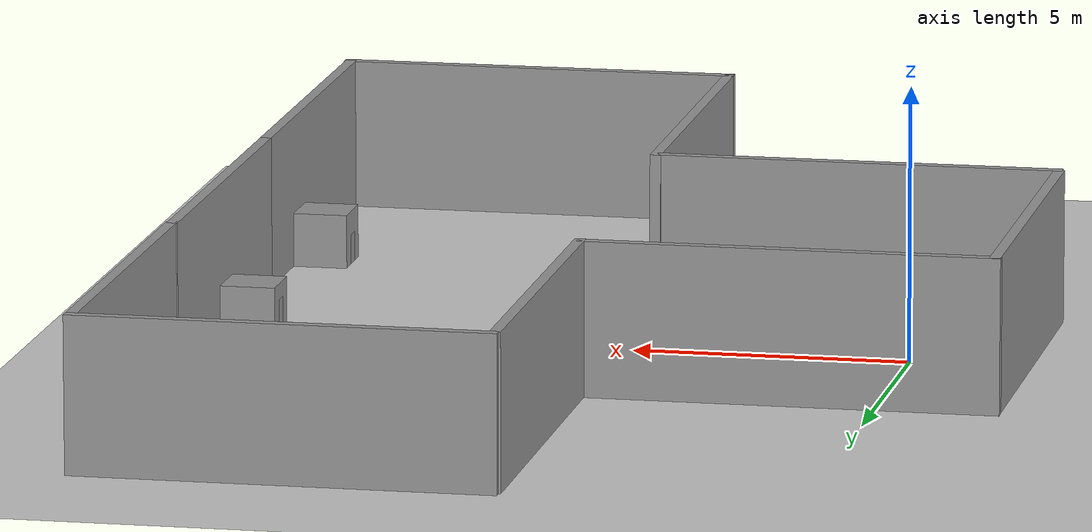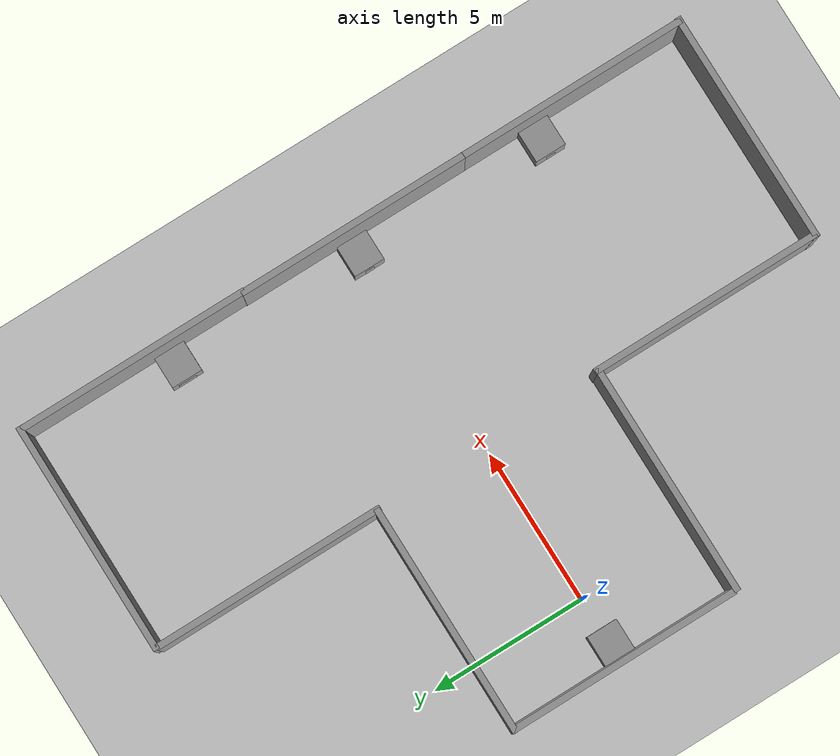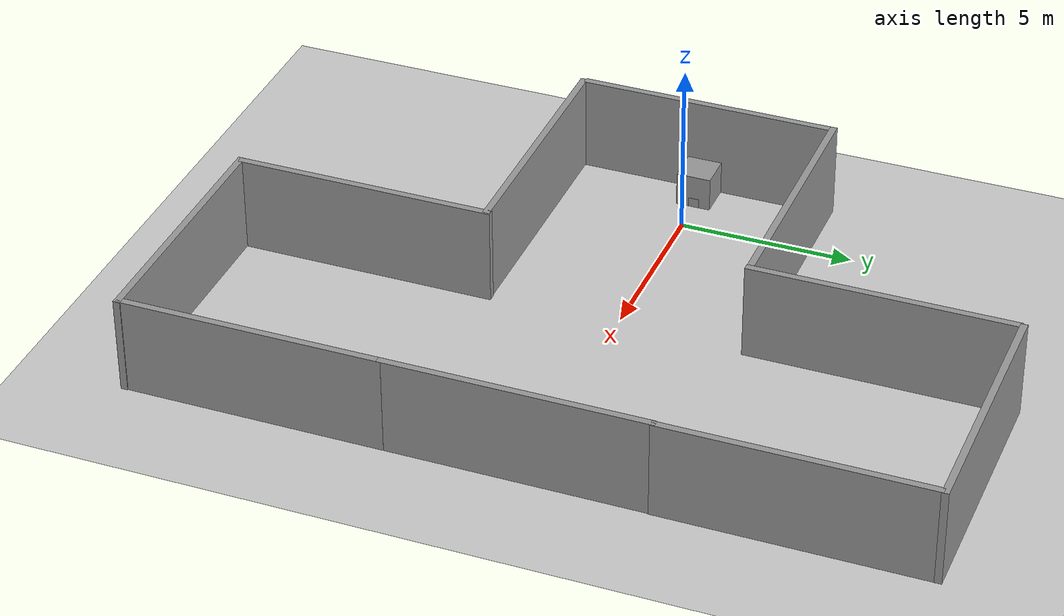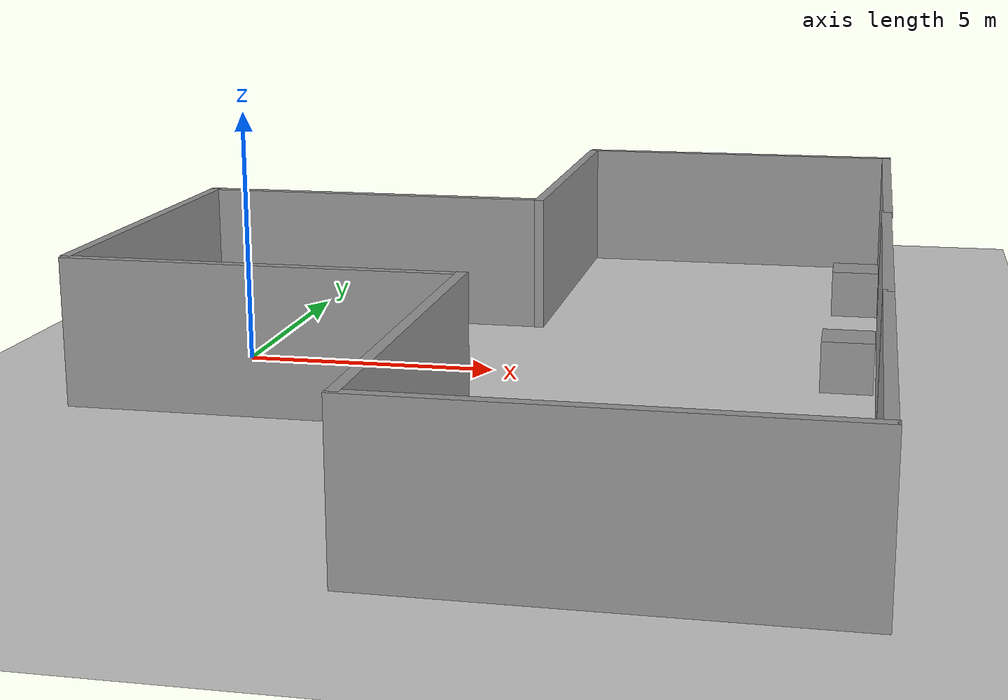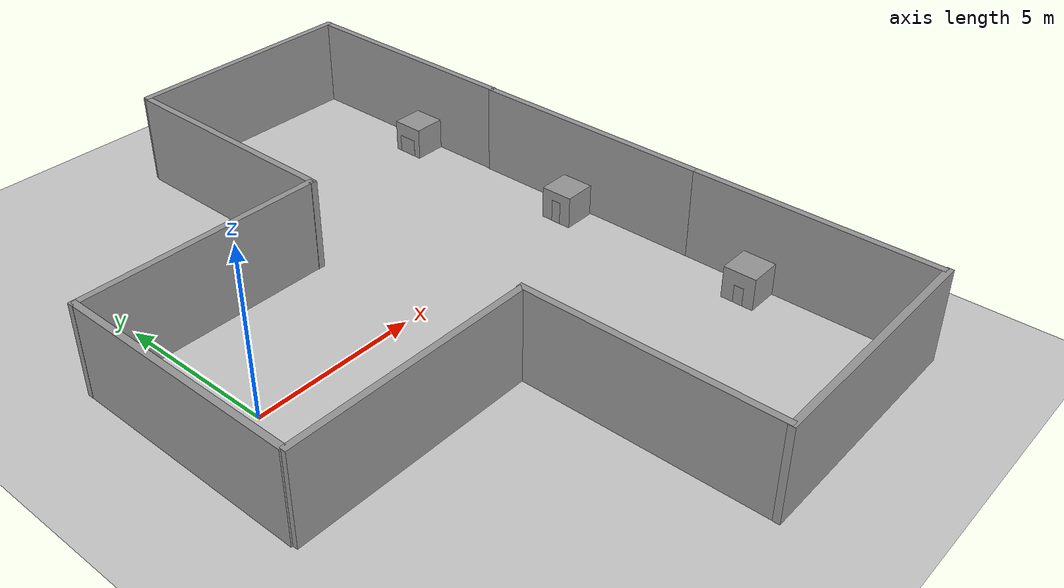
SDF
<sdf version="1.7">
 <world name="default">
  <model name="ground_plane">
   <static>1</static>
   <link name="link">
    <collision name="collision">
     <geometry><plane><normal>0 0 1</normal><size>100 100</size></plane></geometry>
     <surface><friction><ode><mu>100</mu><mu2>50</mu2></ode></friction></surface>
    </collision>
    <visual name="visual">
     <cast_shadows>0</cast_shadows>
     <geometry><plane><normal>0 0 1</normal><size>100 100</size></plane></geometry>
     <material>
      <script><uri>file://media/materials/scripts/gazebo.material</uri><name>Gazebo/Grey</name></script>
     </material>
    </visual>
   </link>
  </model>
  <light name="sun" type="directional">
   <pose>0 0 10 0 -0 0</pose>
   <diffuse>0.8 0.8 0.8 1</diffuse>
   <specular>0.2 0.2 0.2 1</specular>
   <attenuation>
    <range>1000</range>
    <constant>0.9</constant>
    <linear>0.01</linear>
    <quadratic>0.001</quadratic>
   </attenuation>
   <direction>-0.5 0.1 -0.9</direction>
   <spot><inner_angle>0</inner_angle><outer_angle>0</outer_angle><falloff>0</falloff></spot>
  </light>
  <scene><shadows>0</shadows><ambient>0.4 0.4 0.4 1</ambient><background>0.7 0.7 0.7 1</background></scene>
  <physics type="ode">
   <real_time_update_rate>1000</real_time_update_rate>
   <max_step_size>0.001</max_step_size>
   <real_time_factor>1</real_time_factor>
   <ode>
    <solver>
     <type>quick</type>
     <iters>150</iters>
     <precon_iters>0</precon_iters>
     <sor>1.4</sor>
     <use_dynamic_moi_rescaling>1</use_dynamic_moi_rescaling>
    </solver>
    <constraints>
     <cfm>1e-05</cfm>
     <erp>0.2</erp>
     <contact_max_correcting_vel>2000</contact_max_correcting_vel>
     <contact_surface_layer>0.01</contact_surface_layer>
    </constraints>
   </ode>
  </physics>
  <gravity>0 0 -9.8</gravity>
  <magnetic_field>6e-06 2.3e-05 -4.2e-05</magnetic_field>
  <atmosphere type="adiabatic"/>
  <audio><device>default</device></audio>
  <spherical_coordinates>
   <surface_model>EARTH_WGS84</surface_model>
   <latitude_deg>0</latitude_deg>
   <longitude_deg>0</longitude_deg>
   <elevation>0</elevation>
   <heading_deg>0</heading_deg>
  </spherical_coordinates>
  <model name="grey_wall">
   <static>1</static>
   <link name="link">
    <pose>0 0 1.4 0 -0 0</pose>
    <collision name="collision"><geometry><box><size>7.5 0.2 2.8</size></box></geometry></collision>
    <visual name="visual">
     <cast_shadows>0</cast_shadows>
     <geometry><box><size>7.5 0.2 2.8</size></box></geometry>
     <material>
      <script>
       <uri>model://grey_wall/materials/scripts</uri>
       <uri>model://grey_wall/materials/textures</uri>
       <name>vrc/grey_wall</name>
      </script>
     </material>
    </visual>
   </link>
   <pose>1.53922 3.69189 0 0 -0 0</pose>
  </model>
  <model name="grey_wall_0">
   <static>1</static>
   <link name="link">
    <pose>0 0 1.4 0 -0 0</pose>
    <collision name="collision"><geometry><box><size>7.5 0.2 2.8</size></box></geometry></collision>
    <visual name="visual">
     <cast_shadows>0</cast_shadows>
     <geometry><box><size>7.5 0.2 2.8</size></box></geometry>
     <material>
      <script>
       <uri>model://grey_wall/materials/scripts</uri>
       <uri>model://grey_wall/materials/textures</uri>
       <name>vrc/grey_wall</name>
      </script>
     </material>
    </visual>
   </link>
   <pose>1.59607 -3.78368 0 0 -0 0</pose>
  </model>
  <model name="grey_wall_1_clone">
   <static>1</static>
   <link name="link">
    <pose>0 0 1.4 0 -0 0</pose>
    <collision name="collision"><geometry><box><size>7.5 0.2 2.8</size></box></geometry></collision>
    <visual name="visual">
     <cast_shadows>0</cast_shadows>
     <geometry><box><size>7.5 0.2 2.8</size></box></geometry>
     <material>
      <script>
       <uri>model://grey_wall/materials/scripts</uri>
       <uri>model://grey_wall/materials/textures</uri>
       <name>vrc/grey_wall</name>
      </script>
     </material>
    </visual>
   </link>
   <pose>-2.10331 0.015015 0 0 -0 1.57142</pose>
  </model>
  <model name="unit_box">
   <pose>11.9688 6.32161 0.5 0 -0 0.000695</pose>
   <link name="link">
    <inertial>
     <mass>1</mass>
     <inertia>
      <ixx>0.166667</ixx>
      <ixy>0</ixy>
      <ixz>0</ixz>
      <iyy>0.166667</iyy>
      <iyz>0</iyz>
      <izz>0.166667</izz>
     </inertia>
    </inertial>
    <collision name="collision"><geometry><box><size>1 1 1</size></box></geometry></collision>
    <visual name="visual">
     <geometry><box><size>1 1 1</size></box></geometry>
     <material>
      <script><name>Gazebo/Grey</name><uri>file://media/materials/scripts/gazebo.material</uri></script>
     </material>
    </visual>
   </link>
  </model>
  <model name="unit_box_clone">
   <pose>11.9172 0.12312 0.5 0 -0 0.000407</pose>
   <link name="link">
    <inertial>
     <mass>1</mass>
     <inertia>
      <ixx>0.166667</ixx>
      <ixy>0</ixy>
      <ixz>0</ixz>
      <iyy>0.166667</iyy>
      <iyz>0</iyz>
      <izz>0.166667</izz>
     </inertia>
    </inertial>
    <collision name="collision"><geometry><box><size>1 1 1</size></box></geometry></collision>
    <visual name="visual">
     <geometry><box><size>1 1 1</size></box></geometry>
     <material>
      <script><name>Gazebo/Grey</name><uri>file://media/materials/scripts/gazebo.material</uri></script>
     </material>
    </visual>
   </link>
  </model>
  <model name="unit_box_clone_0">
   <pose>11.9709 -6.13481 0.5 0 -0 0.000623</pose>
   <link name="link">
    <inertial>
     <mass>1</mass>
     <inertia>
      <ixx>0.166667</ixx>
      <ixy>0</ixy>
      <ixz>0</ixz>
      <iyy>0.166667</iyy>
      <iyz>0</iyz>
      <izz>0.166667</izz>
     </inertia>
    </inertial>
    <collision name="collision"><geometry><box><size>1 1 1</size></box></geometry></collision>
    <visual name="visual">
     <geometry><box><size>1 1 1</size></box></geometry>
     <material>
      <script><name>Gazebo/Grey</name><uri>file://media/materials/scripts/gazebo.material</uri></script>
     </material>
    </visual>
   </link>
  </model>
  <model name="unit_box_clone_clone">
   <pose>-1.5 -0.023783 0.5 0 -0 0.000592</pose>
   <link name="link">
    <inertial>
     <mass>1</mass>
     <inertia>
      <ixx>0.166667</ixx>
      <ixy>0</ixy>
      <ixz>0</ixz>
      <iyy>0.166667</iyy>
      <iyz>0</iyz>
      <izz>0.166667</izz>
     </inertia>
    </inertial>
    <collision name="collision"><geometry><box><size>1 1 1</size></box></geometry></collision>
    <visual name="visual">
     <geometry><box><size>1 1 1</size></box></geometry>
     <material>
      <script><name>Gazebo/Grey</name><uri>file://media/materials/scripts/gazebo.material</uri></script>
     </material>
    </visual>
   </link>
  </model>
  <model name="grey_wall_1_clone_0_clone">
   <static>1</static>
   <link name="link">
    <pose>0 0 1.4 0 -0 0</pose>
    <collision name="collision"><geometry><box><size>7.5 0.2 2.8</size></box></geometry></collision>
    <visual name="visual">
     <cast_shadows>0</cast_shadows>
     <geometry><box><size>7.5 0.2 2.8</size></box></geometry>
     <material>
      <script>
       <uri>model://grey_wall/materials/scripts</uri>
       <uri>model://grey_wall/materials/textures</uri>
       <name>vrc/grey_wall</name>
      </script>
     </material>
    </visual>
   </link>
   <pose>5.24864 7.32783 0 0 -0 1.57142</pose>
  </model>
  <model name="grey_wall_1_clone_0_clone_0">
   <static>1</static>
   <link name="link">
    <pose>0 0 1.4 0 -0 0</pose>
    <collision name="collision"><geometry><box><size>7.5 0.2 2.8</size></box></geometry></collision>
    <visual name="visual">
     <cast_shadows>0</cast_shadows>
     <geometry><box><size>7.5 0.2 2.8</size></box></geometry>
     <material>
      <script>
       <uri>model://grey_wall/materials/scripts</uri>
       <uri>model://grey_wall/materials/textures</uri>
       <name>vrc/grey_wall</name>
      </script>
     </material>
    </visual>
   </link>
   <pose>5.29861 -7.41012 0 0 -0 1.57142</pose>
  </model>
  <model name="grey_wall_clone">
   <static>1</static>
   <link name="link">
    <pose>0 0 1.4 0 -0 0</pose>
    <collision name="collision"><geometry><box><size>7.5 0.2 2.8</size></box></geometry></collision>
    <visual name="visual">
     <cast_shadows>0</cast_shadows>
     <geometry><box><size>7.5 0.2 2.8</size></box></geometry>
     <material>
      <script>
       <uri>model://grey_wall/materials/scripts</uri>
       <uri>model://grey_wall/materials/textures</uri>
       <name>vrc/grey_wall</name>
      </script>
     </material>
    </visual>
   </link>
   <pose>8.93433 11.1054 0 0 -0 0</pose>
  </model>
  <model name="grey_wall_clone_0">
   <static>1</static>
   <link name="link">
    <pose>0 0 1.4 0 -0 0</pose>
    <collision name="collision"><geometry><box><size>7.5 0.2 2.8</size></box></geometry></collision>
    <visual name="visual">
     <cast_shadows>0</cast_shadows>
     <geometry><box><size>7.5 0.2 2.8</size></box></geometry>
     <material>
      <script>
       <uri>model://grey_wall/materials/scripts</uri>
       <uri>model://grey_wall/materials/textures</uri>
       <name>vrc/grey_wall</name>
      </script>
     </material>
    </visual>
   </link>
   <pose>8.94466 -11.1313 0 0 -0 0</pose>
  </model>
  <model name="grey_wall_1_clone_0_clone_clone">
   <static>1</static>
   <link name="link">
    <pose>0 0 1.4 0 -0 0</pose>
    <collision name="collision"><geometry><box><size>7.5 0.2 2.8</size></box></geometry></collision>
    <visual name="visual">
     <cast_shadows>0</cast_shadows>
     <geometry><box><size>7.5 0.2 2.8</size></box></geometry>
     <material>
      <script>
       <uri>model://grey_wall/materials/scripts</uri>
       <uri>model://grey_wall/materials/textures</uri>
       <name>vrc/grey_wall</name>
      </script>
     </material>
    </visual>
   </link>
   <pose>12.5818 7.32662 0 0 -0 1.57142</pose>
  </model>
  <model name="grey_wall_1_clone_0_clone_clone_0">
   <static>1</static>
   <link name="link">
    <pose>0 0 1.4 0 -0 0</pose>
    <collision name="collision"><geometry><box><size>7.5 0.2 2.8</size></box></geometry></collision>
    <visual name="visual">
     <cast_shadows>0</cast_shadows>
     <geometry><box><size>7.5 0.2 2.8</size></box></geometry>
     <material>
      <script>
       <uri>model://grey_wall/materials/scripts</uri>
       <uri>model://grey_wall/materials/textures</uri>
       <name>vrc/grey_wall</name>
      </script>
     </material>
    </visual>
   </link>
   <pose>12.5653 -0.046938 0 0 -0 1.57142</pose>
  </model>
  <model name="grey_wall_1_clone_0_clone_clone_1">
   <static>1</static>
   <link name="link">
    <pose>0 0 1.4 0 -0 0</pose>
    <collision name="collision"><geometry><box><size>7.5 0.2 2.8</size></box></geometry></collision>
    <visual name="visual">
     <cast_shadows>0</cast_shadows>
     <geometry><box><size>7.5 0.2 2.8</size></box></geometry>
     <material>
      <script>
       <uri>model://grey_wall/materials/scripts</uri>
       <uri>model://grey_wall/materials/textures</uri>
       <name>vrc/grey_wall</name>
      </script>
     </material>
    </visual>
   </link>
   <pose>12.5717 -7.42519 0 0 -0 1.57142</pose>
  </model>
  <model name="white_box">
   <link name="link_0">
    <inertial>
     <mass>1</mass>
     <inertia>
      <ixx>0.166667</ixx>
      <ixy>0</ixy>
      <ixz>0</ixz>
      <iyy>0.166667</iyy>
      <iyz>0</iyz>
      <izz>0.166667</izz>
     </inertia>
    </inertial>
    <visual name="visual">
     <geometry><box><size>0.560192 0.596222 0.001025</size></box></geometry>
     <material>
      <lighting>1</lighting>
      <script><uri>file://media/materials/scripts/gazebo.material</uri><name>Gazebo/Grey</name></script>
      <shader type="pixel"><normal_map>__default__</normal_map></shader>
      <ambient>1 1 1 1</ambient>
      <diffuse>0.7 0.7 0.7 1</diffuse>
      <specular>0.01 0.01 0.01 1</specular>
      <emissive>0 0 0 1</emissive>
     </material>
    </visual>
    <collision name="collision">
     <geometry><box><size>0.560192 0.596222 0.001025</size></box></geometry>
     <surface>
      <friction>
       <ode><mu>1</mu><mu2>1</mu2><fdir1>0 0 0</fdir1><slip1>0</slip1><slip2>0</slip2></ode>
       <torsional>
        <coefficient>1</coefficient>
        <patch_radius>0</patch_radius>
        <surface_radius>0</surface_radius>
        <use_patch_radius>1</use_patch_radius>
        <ode><slip>0</slip></ode>
       </torsional>
      </friction>
      <bounce><restitution_coefficient>0</restitution_coefficient><threshold>1e+06</threshold></bounce>
      <contact>
       <collide_without_contact>0</collide_without_contact>
       <collide_without_contact_bitmask>1</collide_without_contact_bitmask>
       <collide_bitmask>1</collide_bitmask>
       <ode>
        <soft_cfm>0</soft_cfm>
        <soft_erp>0.2</soft_erp>
        <kp>1e+13</kp>
        <kd>1</kd>
        <max_vel>0.01</max_vel>
        <min_depth>0</min_depth>
       </ode>
       <bullet>
        <split_impulse>1</split_impulse>
        <split_impulse_penetration_threshold>-0.01</split_impulse_penetration_threshold>
        <soft_cfm>0</soft_cfm>
        <soft_erp>0.2</soft_erp>
        <kp>1e+13</kp>
        <kd>1</kd>
       </bullet>
      </contact>
     </surface>
    </collision>
   </link>
   <static>0</static>
   <pose>11.466 6.3369 0.280096 0.001623 -1.57079 -0.000933</pose>
  </model>
  <model name="white_box_clone">
   <link name="link_0">
    <inertial>
     <mass>1</mass>
     <inertia>
      <ixx>0.166667</ixx>
      <ixy>0</ixy>
      <ixz>0</ixz>
      <iyy>0.166667</iyy>
      <iyz>0</iyz>
      <izz>0.166667</izz>
     </inertia>
    </inertial>
    <visual name="visual">
     <geometry><box><size>0.710541 0.296223 0.000561015</size></box></geometry>
     <material>
      <lighting>1</lighting>
      <script><uri>file://media/materials/scripts/gazebo.material</uri><name>Gazebo/Grey</name></script>
      <shader type="pixel"><normal_map>__default__</normal_map></shader>
      <ambient>1 1 1 1</ambient>
      <diffuse>0.7 0.7 0.7 1</diffuse>
      <specular>0.01 0.01 0.01 1</specular>
      <emissive>0 0 0 1</emissive>
     </material>
    </visual>
    <collision name="collision">
     <geometry><box><size>0.710541 0.296223 0.000561015</size></box></geometry>
     <surface>
      <friction>
       <ode><mu>1</mu><mu2>1</mu2><fdir1>0 0 0</fdir1><slip1>0</slip1><slip2>0</slip2></ode>
       <torsional>
        <coefficient>1</coefficient>
        <patch_radius>0</patch_radius>
        <surface_radius>0</surface_radius>
        <use_patch_radius>1</use_patch_radius>
        <ode><slip>0</slip></ode>
       </torsional>
      </friction>
      <bounce><restitution_coefficient>0</restitution_coefficient><threshold>1e+06</threshold></bounce>
      <contact>
       <collide_without_contact>0</collide_without_contact>
       <collide_without_contact_bitmask>1</collide_without_contact_bitmask>
       <collide_bitmask>1</collide_bitmask>
       <ode>
        <soft_cfm>0</soft_cfm>
        <soft_erp>0.2</soft_erp>
        <kp>1e+13</kp>
        <kd>1</kd>
        <max_vel>0.01</max_vel>
        <min_depth>0</min_depth>
       </ode>
       <bullet>
        <split_impulse>1</split_impulse>
        <split_impulse_penetration_threshold>-0.01</split_impulse_penetration_threshold>
        <soft_cfm>0</soft_cfm>
        <soft_erp>0.2</soft_erp>
        <kp>1e+13</kp>
        <kd>1</kd>
       </bullet>
      </contact>
     </surface>
    </collision>
   </link>
   <static>0</static>
   <pose>11.4112 0.122469 0.355271 0 -1.57078 0.00047</pose>
  </model>
  <model name="white_box_clone_0">
   <link name="link_0">
    <inertial>
     <mass>1</mass>
     <inertia>
      <ixx>0.166667</ixx>
      <ixy>0</ixy>
      <ixz>0</ixz>
      <iyy>0.166667</iyy>
      <iyz>0</iyz>
      <izz>0.166667</izz>
     </inertia>
    </inertial>
    <visual name="visual">
     <geometry><box><size>0.557304 0.296223 0.000889965</size></box></geometry>
     <material>
      <lighting>1</lighting>
      <script><uri>file://media/materials/scripts/gazebo.material</uri><name>Gazebo/Grey</name></script>
      <shader type="pixel"><normal_map>__default__</normal_map></shader>
      <ambient>1 1 1 1</ambient>
      <diffuse>0.7 0.7 0.7 1</diffuse>
      <specular>0.01 0.01 0.01 1</specular>
      <emissive>0 0 0 1</emissive>
     </material>
    </visual>
    <collision name="collision">
     <geometry><box><size>0.557304 0.296223 0.000889965</size></box></geometry>
     <surface>
      <friction>
       <ode><mu>1</mu><mu2>1</mu2><fdir1>0 0 0</fdir1><slip1>0</slip1><slip2>0</slip2></ode>
       <torsional>
        <coefficient>1</coefficient>
        <patch_radius>0</patch_radius>
        <surface_radius>0</surface_radius>
        <use_patch_radius>1</use_patch_radius>
        <ode><slip>0</slip></ode>
       </torsional>
      </friction>
      <bounce><restitution_coefficient>0</restitution_coefficient><threshold>1e+06</threshold></bounce>
      <contact>
       <collide_without_contact>0</collide_without_contact>
       <collide_without_contact_bitmask>1</collide_without_contact_bitmask>
       <collide_bitmask>1</collide_bitmask>
       <ode>
        <soft_cfm>0</soft_cfm>
        <soft_erp>0.2</soft_erp>
        <kp>1e+13</kp>
        <kd>1</kd>
        <max_vel>0.01</max_vel>
        <min_depth>0</min_depth>
       </ode>
       <bullet>
        <split_impulse>1</split_impulse>
        <split_impulse_penetration_threshold>-0.01</split_impulse_penetration_threshold>
        <soft_cfm>0</soft_cfm>
        <soft_erp>0.2</soft_erp>
        <kp>1e+13</kp>
        <kd>1</kd>
       </bullet>
      </contact>
     </surface>
    </collision>
   </link>
   <static>0</static>
   <pose>11.4703 -6.15494 0.278652 3.14159 -1.57079 -3.14103</pose>
  </model>
  <model name="white_box_clone_clone">
   <link name="link_0">
    <inertial>
     <mass>1</mass>
     <inertia>
      <ixx>0.166667</ixx>
      <ixy>0</ixy>
      <ixz>0</ixz>
      <iyy>0.166667</iyy>
      <iyz>0</iyz>
      <izz>0.166667</izz>
     </inertia>
    </inertial>
    <visual name="visual">
     <geometry><box><size>0.280048 0.296223 0.000561</size></box></geometry>
     <material>
      <lighting>1</lighting>
      <script><uri>file://media/materials/scripts/gazebo.material</uri><name>Gazebo/Grey</name></script>
      <shader type="pixel"><normal_map>__default__</normal_map></shader>
      <ambient>1 1 1 1</ambient>
      <diffuse>0.7 0.7 0.7 1</diffuse>
      <specular>0.01 0.01 0.01 1</specular>
      <emissive>0 0 0 1</emissive>
     </material>
    </visual>
    <collision name="collision">
     <geometry><box><size>0.280048 0.296223 0.000561</size></box></geometry>
     <surface>
      <friction>
       <ode><mu>1</mu><mu2>1</mu2><fdir1>0 0 0</fdir1><slip1>0</slip1><slip2>0</slip2></ode>
       <torsional>
        <coefficient>1</coefficient>
        <patch_radius>0</patch_radius>
        <surface_radius>0</surface_radius>
        <use_patch_radius>1</use_patch_radius>
        <ode><slip>0</slip></ode>
       </torsional>
      </friction>
      <bounce><restitution_coefficient>0</restitution_coefficient><threshold>1e+06</threshold></bounce>
      <contact>
       <collide_without_contact>0</collide_without_contact>
       <collide_without_contact_bitmask>1</collide_without_contact_bitmask>
       <collide_bitmask>1</collide_bitmask>
       <ode>
        <soft_cfm>0</soft_cfm>
        <soft_erp>0.2</soft_erp>
        <kp>1e+13</kp>
        <kd>1</kd>
        <max_vel>0.01</max_vel>
        <min_depth>0</min_depth>
       </ode>
       <bullet>
        <split_impulse>1</split_impulse>
        <split_impulse_penetration_threshold>-0.01</split_impulse_penetration_threshold>
        <soft_cfm>0</soft_cfm>
        <soft_erp>0.2</soft_erp>
        <kp>1e+13</kp>
        <kd>1</kd>
       </bullet>
      </contact>
     </surface>
    </collision>
   </link>
   <static>0</static>
   <pose>-0.999293 -0.000631 0.140025 1.6451 -1.57079 -1.64465</pose>
  </model>
 </world>
</sdf>
